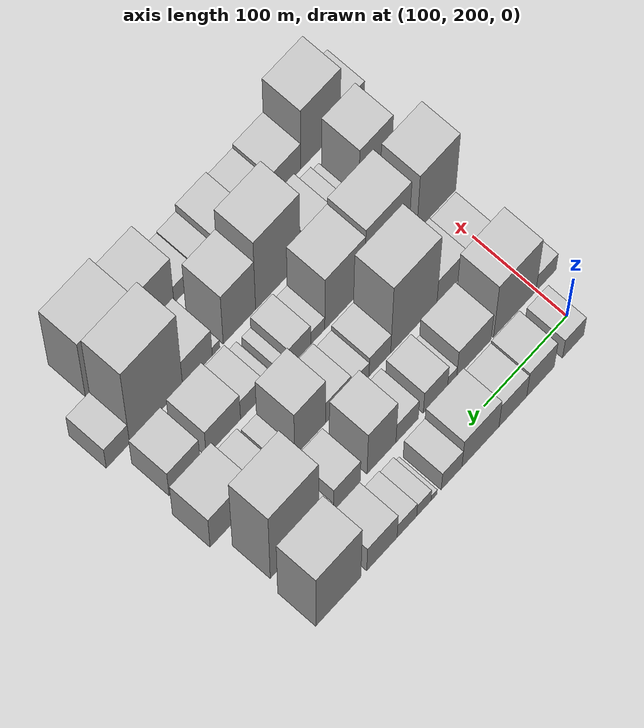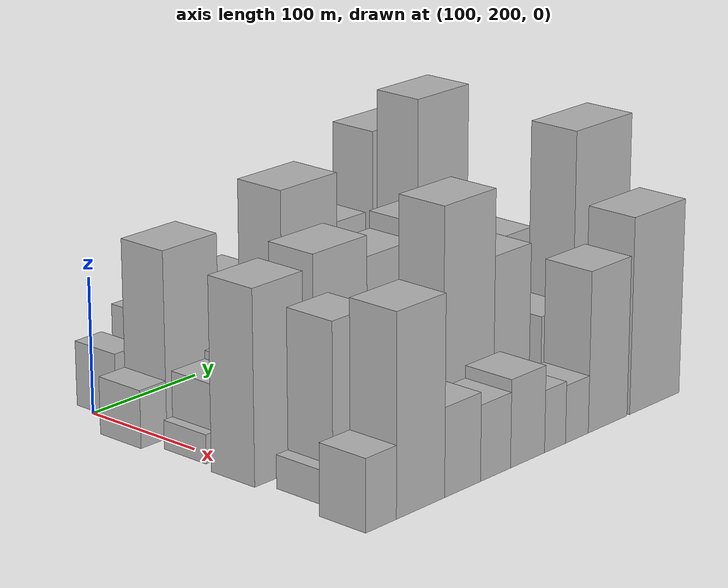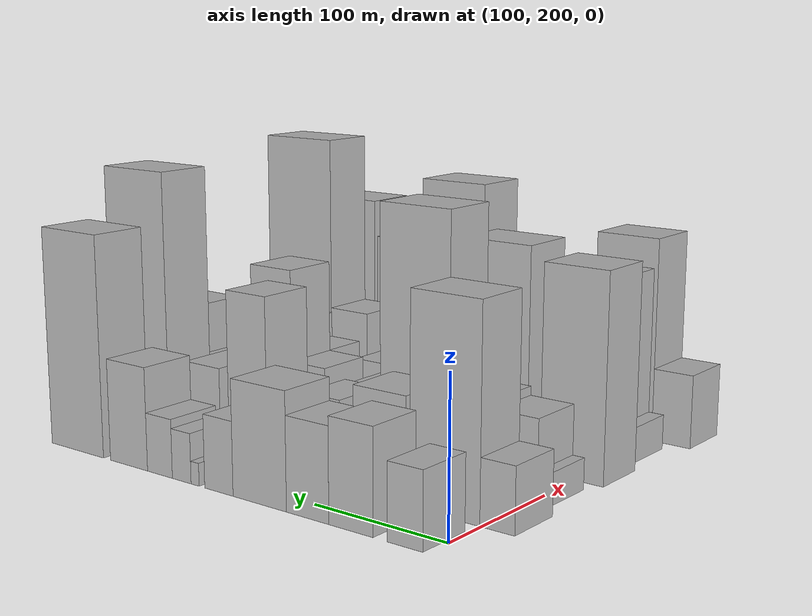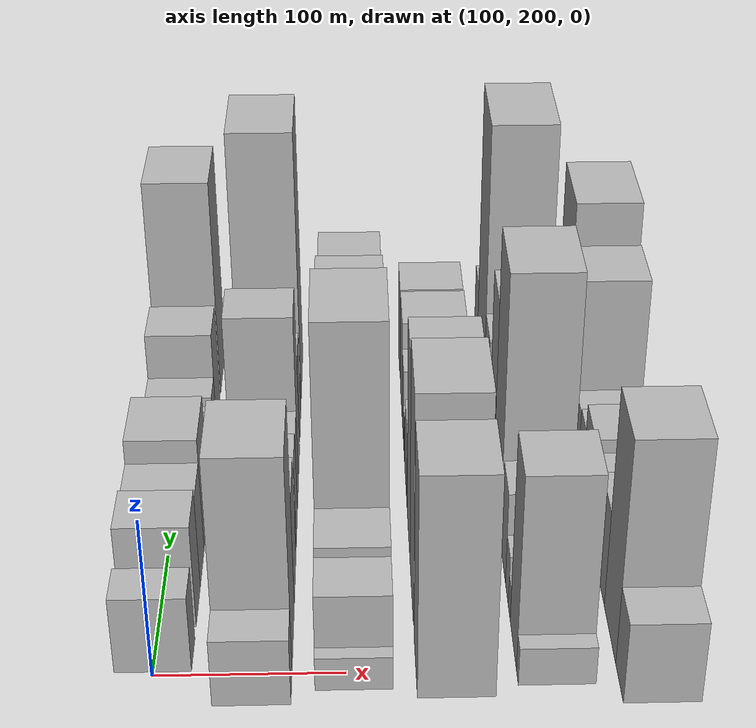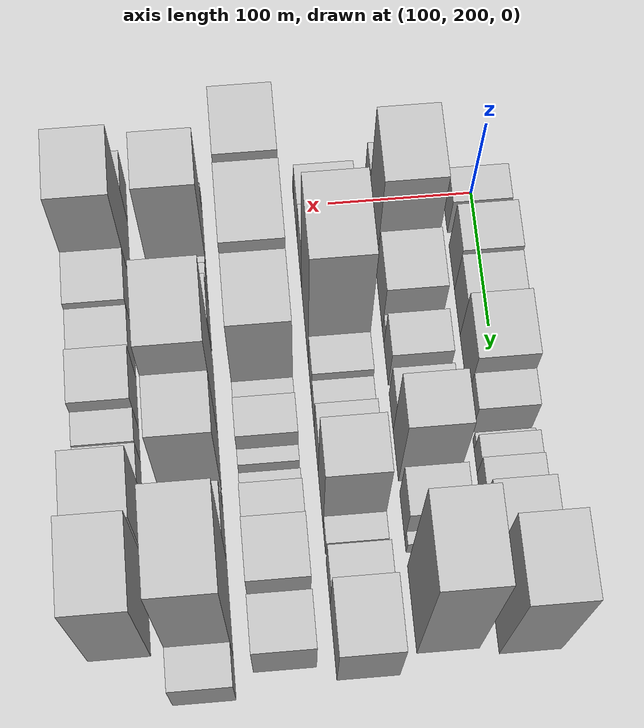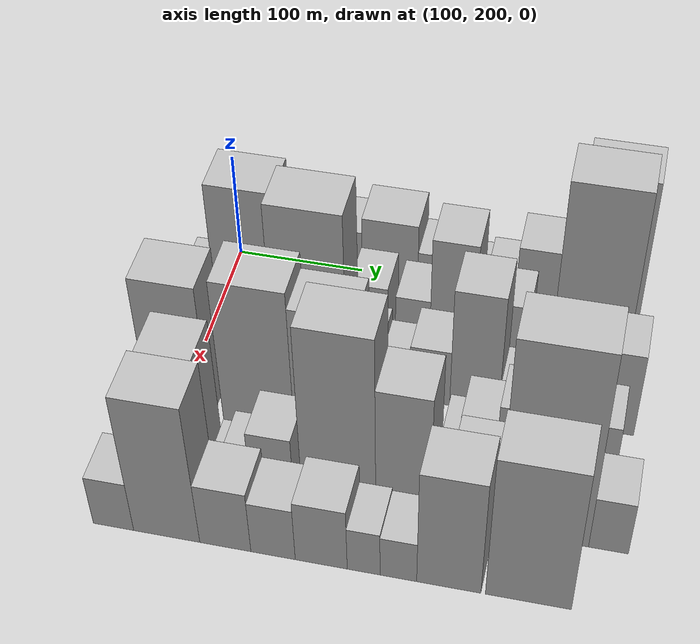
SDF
<sdf version="1.6">
 <world name="default">
  <model name="building_33">
   <static>1</static>
   <pose>100.0000 215.9216 0 0.000000 0.000000 0.000000</pose>
   <link name="link">
    <pose>0 0 24.00 0 0 0</pose>
    <collision name="collision"><geometry><box><size>40.0000 25.5261 48.0000</size></box></geometry></collision>
    <visual name="visual">
     <cast_shadows>0</cast_shadows>
     <geometry><box><size>40.0000 25.5261 48.0000</size></box></geometry>
     <material>
      <script>
       <uri>model://HANNAS_wall/materials/scripts</uri>
       <uri>model://HANNAS_wall/materials/textures</uri>
       <name>vrc/HANNAS_wall</name>
      </script>
     </material>
    </visual>
   </link>
  </model>
  <model name="building_34">
   <static>1</static>
   <pose>100.0000 255.2590 0 0.000000 0.000000 0.000000</pose>
   <link name="link">
    <pose>0 0 33.00 0 0 0</pose>
    <collision name="collision"><geometry><box><size>40.0000 33.1487 66.0000</size></box></geometry></collision>
    <visual name="visual">
     <cast_shadows>0</cast_shadows>
     <geometry><box><size>40.0000 33.1487 66.0000</size></box></geometry>
     <material>
      <script>
       <uri>model://HANNAS_wall/materials/scripts</uri>
       <uri>model://HANNAS_wall/materials/textures</uri>
       <name>vrc/HANNAS_wall</name>
      </script>
     </material>
    </visual>
   </link>
  </model>
  <model name="building_35">
   <static>1</static>
   <pose>100.0000 288.4761 0 0.000000 0.000000 0.000000</pose>
   <link name="link">
    <pose>0 0 30.00 0 0 0</pose>
    <collision name="collision"><geometry><box><size>40.0000 33.2853 60.0000</size></box></geometry></collision>
    <visual name="visual">
     <cast_shadows>0</cast_shadows>
     <geometry><box><size>40.0000 33.2853 60.0000</size></box></geometry>
     <material>
      <script>
       <uri>model://HANNAS_wall/materials/scripts</uri>
       <uri>model://HANNAS_wall/materials/textures</uri>
       <name>vrc/HANNAS_wall</name>
      </script>
     </material>
    </visual>
   </link>
  </model>
  <model name="building_36">
   <static>1</static>
   <pose>100.0000 327.2402 0 0.000000 0.000000 0.000000</pose>
   <link name="link">
    <pose>0 0 37.50 0 0 0</pose>
    <collision name="collision"><geometry><box><size>40.0000 44.2429 75.0000</size></box></geometry></collision>
    <visual name="visual">
     <cast_shadows>0</cast_shadows>
     <geometry><box><size>40.0000 44.2429 75.0000</size></box></geometry>
     <material>
      <script>
       <uri>model://HANNAS_wall/materials/scripts</uri>
       <uri>model://HANNAS_wall/materials/textures</uri>
       <name>vrc/HANNAS_wall</name>
      </script>
     </material>
    </visual>
   </link>
  </model>
  <model name="building_37">
   <static>1</static>
   <pose>100.0000 361.6530 0 0.000000 0.000000 0.000000</pose>
   <link name="link">
    <pose>0 0 24.00 0 0 0</pose>
    <collision name="collision"><geometry><box><size>40.0000 24.5829 48.0000</size></box></geometry></collision>
    <visual name="visual">
     <cast_shadows>0</cast_shadows>
     <geometry><box><size>40.0000 24.5829 48.0000</size></box></geometry>
     <material>
      <script>
       <uri>model://HANNAS_wall/materials/scripts</uri>
       <uri>model://HANNAS_wall/materials/textures</uri>
       <name>vrc/HANNAS_wall</name>
      </script>
     </material>
    </visual>
   </link>
  </model>
  <model name="building_38">
   <static>1</static>
   <pose>100.0000 382.5229 0 0.000000 0.000000 0.000000</pose>
   <link name="link">
    <pose>0 0 7.50 0 0 0</pose>
    <collision name="collision"><geometry><box><size>40.0000 7.1568 15.0000</size></box></geometry></collision>
    <visual name="visual">
     <cast_shadows>0</cast_shadows>
     <geometry><box><size>40.0000 7.1568 15.0000</size></box></geometry>
     <material>
      <script>
       <uri>model://HANNAS_wall/materials/scripts</uri>
       <uri>model://HANNAS_wall/materials/textures</uri>
       <name>vrc/HANNAS_wall</name>
      </script>
     </material>
    </visual>
   </link>
  </model>
  <model name="building_39">
   <static>1</static>
   <pose>100.0000 394.5761 0 0.000000 0.000000 0.000000</pose>
   <link name="link">
    <pose>0 0 16.50 0 0 0</pose>
    <collision name="collision"><geometry><box><size>40.0000 16.9496 33.0000</size></box></geometry></collision>
    <visual name="visual">
     <cast_shadows>0</cast_shadows>
     <geometry><box><size>40.0000 16.9496 33.0000</size></box></geometry>
     <material>
      <script>
       <uri>model://HANNAS_wall/materials/scripts</uri>
       <uri>model://HANNAS_wall/materials/textures</uri>
       <name>vrc/HANNAS_wall</name>
      </script>
     </material>
    </visual>
   </link>
  </model>
  <model name="building_40">
   <static>1</static>
   <pose>100.0000 414.6169 0 0.000000 0.000000 0.000000</pose>
   <link name="link">
    <pose>0 0 19.50 0 0 0</pose>
    <collision name="collision"><geometry><box><size>40.0000 23.1319 39.0000</size></box></geometry></collision>
    <visual name="visual">
     <cast_shadows>0</cast_shadows>
     <geometry><box><size>40.0000 23.1319 39.0000</size></box></geometry>
     <material>
      <script>
       <uri>model://HANNAS_wall/materials/scripts</uri>
       <uri>model://HANNAS_wall/materials/textures</uri>
       <name>vrc/HANNAS_wall</name>
      </script>
     </material>
    </visual>
   </link>
  </model>
  <model name="building_41">
   <static>1</static>
   <pose>100.0000 444.0717 0 0.000000 0.000000 0.000000</pose>
   <link name="link">
    <pose>0 0 34.50 0 0 0</pose>
    <collision name="collision"><geometry><box><size>40.0000 35.7775 69.0000</size></box></geometry></collision>
    <visual name="visual">
     <cast_shadows>0</cast_shadows>
     <geometry><box><size>40.0000 35.7775 69.0000</size></box></geometry>
     <material>
      <script>
       <uri>model://HANNAS_wall/materials/scripts</uri>
       <uri>model://HANNAS_wall/materials/textures</uri>
       <name>vrc/HANNAS_wall</name>
      </script>
     </material>
    </visual>
   </link>
  </model>
  <model name="building_42">
   <static>1</static>
   <pose>100.0000 495.3269 0 0.000000 0.000000 0.000000</pose>
   <link name="link">
    <pose>0 0 75.00 0 0 0</pose>
    <collision name="collision"><geometry><box><size>40.0000 52.7330 150.0000</size></box></geometry></collision>
    <visual name="visual">
     <cast_shadows>0</cast_shadows>
     <geometry><box><size>40.0000 52.7330 150.0000</size></box></geometry>
     <material>
      <script>
       <uri>model://HANNAS_wall/materials/scripts</uri>
       <uri>model://HANNAS_wall/materials/textures</uri>
       <name>vrc/HANNAS_wall</name>
      </script>
     </material>
    </visual>
   </link>
  </model>
  <model name="building_82">
   <static>1</static>
   <pose>152.0000 189.0234 0 0.000000 0.000000 0.000000</pose>
   <link name="link">
    <pose>0 0 21.00 0 0 0</pose>
    <collision name="collision"><geometry><box><size>40.0000 24.3405 42.0000</size></box></geometry></collision>
    <visual name="visual">
     <cast_shadows>0</cast_shadows>
     <geometry><box><size>40.0000 24.3405 42.0000</size></box></geometry>
     <material>
      <script>
       <uri>model://HANNAS_wall/materials/scripts</uri>
       <uri>model://HANNAS_wall/materials/textures</uri>
       <name>vrc/HANNAS_wall</name>
      </script>
     </material>
    </visual>
   </link>
  </model>
  <model name="building_83">
   <static>1</static>
   <pose>152.0000 226.8128 0 0.000000 0.000000 0.000000</pose>
   <link name="link">
    <pose>0 0 67.50 0 0 0</pose>
    <collision name="collision"><geometry><box><size>40.0000 51.2383 135.0000</size></box></geometry></collision>
    <visual name="visual">
     <cast_shadows>0</cast_shadows>
     <geometry><box><size>40.0000 51.2383 135.0000</size></box></geometry>
     <material>
      <script>
       <uri>model://HANNAS_wall/materials/scripts</uri>
       <uri>model://HANNAS_wall/materials/textures</uri>
       <name>vrc/HANNAS_wall</name>
      </script>
     </material>
    </visual>
   </link>
  </model>
  <model name="building_84">
   <static>1</static>
   <pose>152.0000 275.9680 0 0.000000 0.000000 0.000000</pose>
   <link name="link">
    <pose>0 0 34.50 0 0 0</pose>
    <collision name="collision"><geometry><box><size>40.0000 41.0722 69.0000</size></box></geometry></collision>
    <visual name="visual">
     <cast_shadows>0</cast_shadows>
     <geometry><box><size>40.0000 41.0722 69.0000</size></box></geometry>
     <material>
      <script>
       <uri>model://HANNAS_wall/materials/scripts</uri>
       <uri>model://HANNAS_wall/materials/textures</uri>
       <name>vrc/HANNAS_wall</name>
      </script>
     </material>
    </visual>
   </link>
  </model>
  <model name="building_85">
   <static>1</static>
   <pose>152.0000 301.9832 0 0.000000 0.000000 0.000000</pose>
   <link name="link">
    <pose>0 0 13.50 0 0 0</pose>
    <collision name="collision"><geometry><box><size>40.0000 10.9582 27.0000</size></box></geometry></collision>
    <visual name="visual">
     <cast_shadows>0</cast_shadows>
     <geometry><box><size>40.0000 10.9582 27.0000</size></box></geometry>
     <material>
      <script>
       <uri>model://HANNAS_wall/materials/scripts</uri>
       <uri>model://HANNAS_wall/materials/textures</uri>
       <name>vrc/HANNAS_wall</name>
      </script>
     </material>
    </visual>
   </link>
  </model>
  <model name="building_86">
   <static>1</static>
   <pose>152.0000 321.9917 0 0.000000 0.000000 0.000000</pose>
   <link name="link">
    <pose>0 0 28.50 0 0 0</pose>
    <collision name="collision"><geometry><box><size>40.0000 29.0587 57.0000</size></box></geometry></collision>
    <visual name="visual">
     <cast_shadows>0</cast_shadows>
     <geometry><box><size>40.0000 29.0587 57.0000</size></box></geometry>
     <material>
      <script>
       <uri>model://HANNAS_wall/materials/scripts</uri>
       <uri>model://HANNAS_wall/materials/textures</uri>
       <name>vrc/HANNAS_wall</name>
      </script>
     </material>
    </visual>
   </link>
  </model>
  <model name="building_87">
   <static>1</static>
   <pose>152.0000 355.7983 0 0.000000 0.000000 0.000000</pose>
   <link name="link">
    <pose>0 0 25.50 0 0 0</pose>
    <collision name="collision"><geometry><box><size>40.0000 26.5545 51.0000</size></box></geometry></collision>
    <visual name="visual">
     <cast_shadows>0</cast_shadows>
     <geometry><box><size>40.0000 26.5545 51.0000</size></box></geometry>
     <material>
      <script>
       <uri>model://HANNAS_wall/materials/scripts</uri>
       <uri>model://HANNAS_wall/materials/textures</uri>
       <name>vrc/HANNAS_wall</name>
      </script>
     </material>
    </visual>
   </link>
  </model>
  <model name="building_88">
   <static>1</static>
   <pose>152.0000 386.2051 0 0.000000 0.000000 0.000000</pose>
   <link name="link">
    <pose>0 0 57.00 0 0 0</pose>
    <collision name="collision"><geometry><box><size>40.0000 34.2590 114.0000</size></box></geometry></collision>
    <visual name="visual">
     <cast_shadows>0</cast_shadows>
     <geometry><box><size>40.0000 34.2590 114.0000</size></box></geometry>
     <material>
      <script>
       <uri>model://HANNAS_wall/materials/scripts</uri>
       <uri>model://HANNAS_wall/materials/textures</uri>
       <name>vrc/HANNAS_wall</name>
      </script>
     </material>
    </visual>
   </link>
  </model>
  <model name="building_89">
   <static>1</static>
   <pose>152.0000 427.0773 0 0.000000 0.000000 0.000000</pose>
   <link name="link">
    <pose>0 0 30.00 0 0 0</pose>
    <collision name="collision"><geometry><box><size>40.0000 31.4854 60.0000</size></box></geometry></collision>
    <visual name="visual">
     <cast_shadows>0</cast_shadows>
     <geometry><box><size>40.0000 31.4854 60.0000</size></box></geometry>
     <material>
      <script>
       <uri>model://HANNAS_wall/materials/scripts</uri>
       <uri>model://HANNAS_wall/materials/textures</uri>
       <name>vrc/HANNAS_wall</name>
      </script>
     </material>
    </visual>
   </link>
  </model>
  <model name="building_90">
   <static>1</static>
   <pose>152.0000 447.1590 0 0.000000 0.000000 0.000000</pose>
   <link name="link">
    <pose>0 0 10.50 0 0 0</pose>
    <collision name="collision"><geometry><box><size>40.0000 8.6780 21.0000</size></box></geometry></collision>
    <visual name="visual">
     <cast_shadows>0</cast_shadows>
     <geometry><box><size>40.0000 8.6780 21.0000</size></box></geometry>
     <material>
      <script>
       <uri>model://HANNAS_wall/materials/scripts</uri>
       <uri>model://HANNAS_wall/materials/textures</uri>
       <name>vrc/HANNAS_wall</name>
      </script>
     </material>
    </visual>
   </link>
  </model>
  <model name="building_91">
   <static>1</static>
   <pose>152.0000 488.7756 0 0.000000 0.000000 0.000000</pose>
   <link name="link">
    <pose>0 0 93.00 0 0 0</pose>
    <collision name="collision"><geometry><box><size>40.0000 56.5553 186.0000</size></box></geometry></collision>
    <visual name="visual">
     <cast_shadows>0</cast_shadows>
     <geometry><box><size>40.0000 56.5553 186.0000</size></box></geometry>
     <material>
      <script>
       <uri>model://HANNAS_wall/materials/scripts</uri>
       <uri>model://HANNAS_wall/materials/textures</uri>
       <name>vrc/HANNAS_wall</name>
      </script>
     </material>
    </visual>
   </link>
  </model>
  <model name="building_133">
   <static>1</static>
   <pose>204.0000 191.1578 0 0.000000 0.000000 0.000000</pose>
   <link name="link">
    <pose>0 0 10.50 0 0 0</pose>
    <collision name="collision"><geometry><box><size>40.0000 8.4028 21.0000</size></box></geometry></collision>
    <visual name="visual">
     <cast_shadows>0</cast_shadows>
     <geometry><box><size>40.0000 8.4028 21.0000</size></box></geometry>
     <material>
      <script>
       <uri>model://HANNAS_wall/materials/scripts</uri>
       <uri>model://HANNAS_wall/materials/textures</uri>
       <name>vrc/HANNAS_wall</name>
      </script>
     </material>
    </visual>
   </link>
  </model>
  <model name="building_134">
   <static>1</static>
   <pose>204.0000 211.2777 0 0.000000 0.000000 0.000000</pose>
   <link name="link">
    <pose>0 0 27.00 0 0 0</pose>
    <collision name="collision"><geometry><box><size>40.0000 31.8368 54.0000</size></box></geometry></collision>
    <visual name="visual">
     <cast_shadows>0</cast_shadows>
     <geometry><box><size>40.0000 31.8368 54.0000</size></box></geometry>
     <material>
      <script>
       <uri>model://HANNAS_wall/materials/scripts</uri>
       <uri>model://HANNAS_wall/materials/textures</uri>
       <name>vrc/HANNAS_wall</name>
      </script>
     </material>
    </visual>
   </link>
  </model>
  <model name="building_135">
   <static>1</static>
   <pose>204.0000 244.3025 0 0.000000 0.000000 0.000000</pose>
   <link name="link">
    <pose>0 0 30.00 0 0 0</pose>
    <collision name="collision"><geometry><box><size>40.0000 34.2127 60.0000</size></box></geometry></collision>
    <visual name="visual">
     <cast_shadows>0</cast_shadows>
     <geometry><box><size>40.0000 34.2127 60.0000</size></box></geometry>
     <material>
      <script>
       <uri>model://HANNAS_wall/materials/scripts</uri>
       <uri>model://HANNAS_wall/materials/textures</uri>
       <name>vrc/HANNAS_wall</name>
      </script>
     </material>
    </visual>
   </link>
  </model>
  <model name="building_136">
   <static>1</static>
   <pose>204.0000 289.0864 0 0.000000 0.000000 0.000000</pose>
   <link name="link">
    <pose>0 0 87.00 0 0 0</pose>
    <collision name="collision"><geometry><box><size>40.0000 55.3552 174.0000</size></box></geometry></collision>
    <visual name="visual">
     <cast_shadows>0</cast_shadows>
     <geometry><box><size>40.0000 55.3552 174.0000</size></box></geometry>
     <material>
      <script>
       <uri>model://HANNAS_wall/materials/scripts</uri>
       <uri>model://HANNAS_wall/materials/textures</uri>
       <name>vrc/HANNAS_wall</name>
      </script>
     </material>
    </visual>
   </link>
  </model>
  <model name="building_137">
   <static>1</static>
   <pose>204.0000 329.7256 0 0.000000 0.000000 0.000000</pose>
   <link name="link">
    <pose>0 0 25.50 0 0 0</pose>
    <collision name="collision"><geometry><box><size>40.0000 25.9233 51.0000</size></box></geometry></collision>
    <visual name="visual">
     <cast_shadows>0</cast_shadows>
     <geometry><box><size>40.0000 25.9233 51.0000</size></box></geometry>
     <material>
      <script>
       <uri>model://HANNAS_wall/materials/scripts</uri>
       <uri>model://HANNAS_wall/materials/textures</uri>
       <name>vrc/HANNAS_wall</name>
      </script>
     </material>
    </visual>
   </link>
  </model>
  <model name="building_138">
   <static>1</static>
   <pose>204.0000 353.5084 0 0.000000 0.000000 0.000000</pose>
   <link name="link">
    <pose>0 0 19.50 0 0 0</pose>
    <collision name="collision"><geometry><box><size>40.0000 21.6423 39.0000</size></box></geometry></collision>
    <visual name="visual">
     <cast_shadows>0</cast_shadows>
     <geometry><box><size>40.0000 21.6423 39.0000</size></box></geometry>
     <material>
      <script>
       <uri>model://HANNAS_wall/materials/scripts</uri>
       <uri>model://HANNAS_wall/materials/textures</uri>
       <name>vrc/HANNAS_wall</name>
      </script>
     </material>
    </visual>
   </link>
  </model>
  <model name="building_139">
   <static>1</static>
   <pose>204.0000 379.2875 0 0.000000 0.000000 0.000000</pose>
   <link name="link">
    <pose>0 0 28.50 0 0 0</pose>
    <collision name="collision"><geometry><box><size>40.0000 29.9158 57.0000</size></box></geometry></collision>
    <visual name="visual">
     <cast_shadows>0</cast_shadows>
     <geometry><box><size>40.0000 29.9158 57.0000</size></box></geometry>
     <material>
      <script>
       <uri>model://HANNAS_wall/materials/scripts</uri>
       <uri>model://HANNAS_wall/materials/textures</uri>
       <name>vrc/HANNAS_wall</name>
      </script>
     </material>
    </visual>
   </link>
  </model>
  <model name="building_140">
   <static>1</static>
   <pose>204.0000 412.5350 0 0.000000 0.000000 0.000000</pose>
   <link name="link">
    <pose>0 0 60.00 0 0 0</pose>
    <collision name="collision"><geometry><box><size>40.0000 36.5794 120.0000</size></box></geometry></collision>
    <visual name="visual">
     <cast_shadows>0</cast_shadows>
     <geometry><box><size>40.0000 36.5794 120.0000</size></box></geometry>
     <material>
      <script>
       <uri>model://HANNAS_wall/materials/scripts</uri>
       <uri>model://HANNAS_wall/materials/textures</uri>
       <name>vrc/HANNAS_wall</name>
      </script>
     </material>
    </visual>
   </link>
  </model>
  <model name="building_141">
   <static>1</static>
   <pose>204.0000 439.7132 0 0.000000 0.000000 0.000000</pose>
   <link name="link">
    <pose>0 0 15.00 0 0 0</pose>
    <collision name="collision"><geometry><box><size>40.0000 17.7769 30.0000</size></box></geometry></collision>
    <visual name="visual">
     <cast_shadows>0</cast_shadows>
     <geometry><box><size>40.0000 17.7769 30.0000</size></box></geometry>
     <material>
      <script>
       <uri>model://HANNAS_wall/materials/scripts</uri>
       <uri>model://HANNAS_wall/materials/textures</uri>
       <name>vrc/HANNAS_wall</name>
      </script>
     </material>
    </visual>
   </link>
  </model>
  <model name="building_142">
   <static>1</static>
   <pose>204.0000 467.9567 0 0.000000 0.000000 0.000000</pose>
   <link name="link">
    <pose>0 0 24.00 0 0 0</pose>
    <collision name="collision"><geometry><box><size>40.0000 28.7100 48.0000</size></box></geometry></collision>
    <visual name="visual">
     <cast_shadows>0</cast_shadows>
     <geometry><box><size>40.0000 28.7100 48.0000</size></box></geometry>
     <material>
      <script>
       <uri>model://HANNAS_wall/materials/scripts</uri>
       <uri>model://HANNAS_wall/materials/textures</uri>
       <name>vrc/HANNAS_wall</name>
      </script>
     </material>
    </visual>
   </link>
  </model>
  <model name="building_143">
   <static>1</static>
   <pose>204.0000 506.0296 0 0.000000 0.000000 0.000000</pose>
   <link name="link">
    <pose>0 0 42.00 0 0 0</pose>
    <collision name="collision"><geometry><box><size>40.0000 47.4359 84.0000</size></box></geometry></collision>
    <visual name="visual">
     <cast_shadows>0</cast_shadows>
     <geometry><box><size>40.0000 47.4359 84.0000</size></box></geometry>
     <material>
      <script>
       <uri>model://HANNAS_wall/materials/scripts</uri>
       <uri>model://HANNAS_wall/materials/textures</uri>
       <name>vrc/HANNAS_wall</name>
      </script>
     </material>
    </visual>
   </link>
  </model>
  <model name="building_188">
   <static>1</static>
   <pose>256.0000 203.3618 0 0.000000 0.000000 0.000000</pose>
   <link name="link">
    <pose>0 0 69.00 0 0 0</pose>
    <collision name="collision"><geometry><box><size>40.0000 46.9925 138.0000</size></box></geometry></collision>
    <visual name="visual">
     <cast_shadows>0</cast_shadows>
     <geometry><box><size>40.0000 46.9925 138.0000</size></box></geometry>
     <material>
      <script>
       <uri>model://HANNAS_wall/materials/scripts</uri>
       <uri>model://HANNAS_wall/materials/textures</uri>
       <name>vrc/HANNAS_wall</name>
      </script>
     </material>
    </visual>
   </link>
  </model>
  <model name="building_189">
   <static>1</static>
   <pose>256.0000 263.3804 0 0.000000 0.000000 0.000000</pose>
   <link name="link">
    <pose>0 0 73.50 0 0 0</pose>
    <collision name="collision"><geometry><box><size>40.0000 53.0446 147.0000</size></box></geometry></collision>
    <visual name="visual">
     <cast_shadows>0</cast_shadows>
     <geometry><box><size>40.0000 53.0446 147.0000</size></box></geometry>
     <material>
      <script>
       <uri>model://HANNAS_wall/materials/scripts</uri>
       <uri>model://HANNAS_wall/materials/textures</uri>
       <name>vrc/HANNAS_wall</name>
      </script>
     </material>
    </visual>
   </link>
  </model>
  <model name="building_190">
   <static>1</static>
   <pose>256.0000 313.5025 0 0.000000 0.000000 0.000000</pose>
   <link name="link">
    <pose>0 0 66.00 0 0 0</pose>
    <collision name="collision"><geometry><box><size>40.0000 47.1995 132.0000</size></box></geometry></collision>
    <visual name="visual">
     <cast_shadows>0</cast_shadows>
     <geometry><box><size>40.0000 47.1995 132.0000</size></box></geometry>
     <material>
      <script>
       <uri>model://HANNAS_wall/materials/scripts</uri>
       <uri>model://HANNAS_wall/materials/textures</uri>
       <name>vrc/HANNAS_wall</name>
      </script>
     </material>
    </visual>
   </link>
  </model>
  <model name="building_191">
   <static>1</static>
   <pose>256.0000 345.5120 0 0.000000 0.000000 0.000000</pose>
   <link name="link">
    <pose>0 0 16.50 0 0 0</pose>
    <collision name="collision"><geometry><box><size>40.0000 16.8196 33.0000</size></box></geometry></collision>
    <visual name="visual">
     <cast_shadows>0</cast_shadows>
     <geometry><box><size>40.0000 16.8196 33.0000</size></box></geometry>
     <material>
      <script>
       <uri>model://HANNAS_wall/materials/scripts</uri>
       <uri>model://HANNAS_wall/materials/textures</uri>
       <name>vrc/HANNAS_wall</name>
      </script>
     </material>
    </visual>
   </link>
  </model>
  <model name="building_192">
   <static>1</static>
   <pose>256.0000 367.0573 0 0.000000 0.000000 0.000000</pose>
   <link name="link">
    <pose>0 0 25.50 0 0 0</pose>
    <collision name="collision"><geometry><box><size>40.0000 26.2709 51.0000</size></box></geometry></collision>
    <visual name="visual">
     <cast_shadows>0</cast_shadows>
     <geometry><box><size>40.0000 26.2709 51.0000</size></box></geometry>
     <material>
      <script>
       <uri>model://HANNAS_wall/materials/scripts</uri>
       <uri>model://HANNAS_wall/materials/textures</uri>
       <name>vrc/HANNAS_wall</name>
      </script>
     </material>
    </visual>
   </link>
  </model>
  <model name="building_193">
   <static>1</static>
   <pose>256.0000 385.5748 0 0.000000 0.000000 0.000000</pose>
   <link name="link">
    <pose>0 0 12.00 0 0 0</pose>
    <collision name="collision"><geometry><box><size>40.0000 10.7643 24.0000</size></box></geometry></collision>
    <visual name="visual">
     <cast_shadows>0</cast_shadows>
     <geometry><box><size>40.0000 10.7643 24.0000</size></box></geometry>
     <material>
      <script>
       <uri>model://HANNAS_wall/materials/scripts</uri>
       <uri>model://HANNAS_wall/materials/textures</uri>
       <name>vrc/HANNAS_wall</name>
      </script>
     </material>
    </visual>
   </link>
  </model>
  <model name="building_194">
   <static>1</static>
   <pose>256.0000 403.7031 0 0.000000 0.000000 0.000000</pose>
   <link name="link">
    <pose>0 0 13.50 0 0 0</pose>
    <collision name="collision"><geometry><box><size>40.0000 13.4923 27.0000</size></box></geometry></collision>
    <visual name="visual">
     <cast_shadows>0</cast_shadows>
     <geometry><box><size>40.0000 13.4923 27.0000</size></box></geometry>
     <material>
      <script>
       <uri>model://HANNAS_wall/materials/scripts</uri>
       <uri>model://HANNAS_wall/materials/textures</uri>
       <name>vrc/HANNAS_wall</name>
      </script>
     </material>
    </visual>
   </link>
  </model>
  <model name="building_195">
   <static>1</static>
   <pose>256.0000 423.6144 0 0.000000 0.000000 0.000000</pose>
   <link name="link">
    <pose>0 0 25.50 0 0 0</pose>
    <collision name="collision"><geometry><box><size>40.0000 26.3303 51.0000</size></box></geometry></collision>
    <visual name="visual">
     <cast_shadows>0</cast_shadows>
     <geometry><box><size>40.0000 26.3303 51.0000</size></box></geometry>
     <material>
      <script>
       <uri>model://HANNAS_wall/materials/scripts</uri>
       <uri>model://HANNAS_wall/materials/textures</uri>
       <name>vrc/HANNAS_wall</name>
      </script>
     </material>
    </visual>
   </link>
  </model>
  <model name="building_196">
   <static>1</static>
   <pose>256.0000 456.9393 0 0.000000 0.000000 0.000000</pose>
   <link name="link">
    <pose>0 0 34.50 0 0 0</pose>
    <collision name="collision"><geometry><box><size>40.0000 40.3195 69.0000</size></box></geometry></collision>
    <visual name="visual">
     <cast_shadows>0</cast_shadows>
     <geometry><box><size>40.0000 40.3195 69.0000</size></box></geometry>
     <material>
      <script>
       <uri>model://HANNAS_wall/materials/scripts</uri>
       <uri>model://HANNAS_wall/materials/textures</uri>
       <name>vrc/HANNAS_wall</name>
      </script>
     </material>
    </visual>
   </link>
  </model>
  <model name="building_197">
   <static>1</static>
   <pose>256.0000 502.2770 0 0.000000 0.000000 0.000000</pose>
   <link name="link">
    <pose>0 0 33.00 0 0 0</pose>
    <collision name="collision"><geometry><box><size>40.0000 36.3561 66.0000</size></box></geometry></collision>
    <visual name="visual">
     <cast_shadows>0</cast_shadows>
     <geometry><box><size>40.0000 36.3561 66.0000</size></box></geometry>
     <material>
      <script>
       <uri>model://HANNAS_wall/materials/scripts</uri>
       <uri>model://HANNAS_wall/materials/textures</uri>
       <name>vrc/HANNAS_wall</name>
      </script>
     </material>
    </visual>
   </link>
  </model>
  <model name="building_233">
   <static>1</static>
   <pose>308.0000 193.6004 0 0.000000 0.000000 0.000000</pose>
   <link name="link">
    <pose>0 0 12.00 0 0 0</pose>
    <collision name="collision"><geometry><box><size>40.0000 11.1275 24.0000</size></box></geometry></collision>
    <visual name="visual">
     <cast_shadows>0</cast_shadows>
     <geometry><box><size>40.0000 11.1275 24.0000</size></box></geometry>
     <material>
      <script>
       <uri>model://HANNAS_wall/materials/scripts</uri>
       <uri>model://HANNAS_wall/materials/textures</uri>
       <name>vrc/HANNAS_wall</name>
      </script>
     </material>
    </visual>
   </link>
  </model>
  <model name="building_234">
   <static>1</static>
   <pose>308.0000 218.8397 0 0.000000 0.000000 0.000000</pose>
   <link name="link">
    <pose>0 0 61.50 0 0 0</pose>
    <collision name="collision"><geometry><box><size>40.0000 39.3511 123.0000</size></box></geometry></collision>
    <visual name="visual">
     <cast_shadows>0</cast_shadows>
     <geometry><box><size>40.0000 39.3511 123.0000</size></box></geometry>
     <material>
      <script>
       <uri>model://HANNAS_wall/materials/scripts</uri>
       <uri>model://HANNAS_wall/materials/textures</uri>
       <name>vrc/HANNAS_wall</name>
      </script>
     </material>
    </visual>
   </link>
  </model>
  <model name="building_235">
   <static>1</static>
   <pose>308.0000 246.4734 0 0.000000 0.000000 0.000000</pose>
   <link name="link">
    <pose>0 0 10.50 0 0 0</pose>
    <collision name="collision"><geometry><box><size>40.0000 9.9164 21.0000</size></box></geometry></collision>
    <visual name="visual">
     <cast_shadows>0</cast_shadows>
     <geometry><box><size>40.0000 9.9164 21.0000</size></box></geometry>
     <material>
      <script>
       <uri>model://HANNAS_wall/materials/scripts</uri>
       <uri>model://HANNAS_wall/materials/textures</uri>
       <name>vrc/HANNAS_wall</name>
      </script>
     </material>
    </visual>
   </link>
  </model>
  <model name="building_236">
   <static>1</static>
   <pose>308.0000 261.2024 0 0.000000 0.000000 0.000000</pose>
   <link name="link">
    <pose>0 0 16.50 0 0 0</pose>
    <collision name="collision"><geometry><box><size>40.0000 19.5416 33.0000</size></box></geometry></collision>
    <visual name="visual">
     <cast_shadows>0</cast_shadows>
     <geometry><box><size>40.0000 19.5416 33.0000</size></box></geometry>
     <material>
      <script>
       <uri>model://HANNAS_wall/materials/scripts</uri>
       <uri>model://HANNAS_wall/materials/textures</uri>
       <name>vrc/HANNAS_wall</name>
      </script>
     </material>
    </visual>
   </link>
  </model>
  <model name="building_237">
   <static>1</static>
   <pose>308.0000 286.7816 0 0.000000 0.000000 0.000000</pose>
   <link name="link">
    <pose>0 0 30.00 0 0 0</pose>
    <collision name="collision"><geometry><box><size>40.0000 31.6169 60.0000</size></box></geometry></collision>
    <visual name="visual">
     <cast_shadows>0</cast_shadows>
     <geometry><box><size>40.0000 31.6169 60.0000</size></box></geometry>
     <material>
      <script>
       <uri>model://HANNAS_wall/materials/scripts</uri>
       <uri>model://HANNAS_wall/materials/textures</uri>
       <name>vrc/HANNAS_wall</name>
      </script>
     </material>
    </visual>
   </link>
  </model>
  <model name="building_238">
   <static>1</static>
   <pose>308.0000 335.0224 0 0.000000 0.000000 0.000000</pose>
   <link name="link">
    <pose>0 0 87.00 0 0 0</pose>
    <collision name="collision"><geometry><box><size>40.0000 52.8645 174.0000</size></box></geometry></collision>
    <visual name="visual">
     <cast_shadows>0</cast_shadows>
     <geometry><box><size>40.0000 52.8645 174.0000</size></box></geometry>
     <material>
      <script>
       <uri>model://HANNAS_wall/materials/scripts</uri>
       <uri>model://HANNAS_wall/materials/textures</uri>
       <name>vrc/HANNAS_wall</name>
      </script>
     </material>
    </visual>
   </link>
  </model>
  <model name="building_239">
   <static>1</static>
   <pose>308.0000 380.6461 0 0.000000 0.000000 0.000000</pose>
   <link name="link">
    <pose>0 0 63.00 0 0 0</pose>
    <collision name="collision"><geometry><box><size>40.0000 38.3829 126.0000</size></box></geometry></collision>
    <visual name="visual">
     <cast_shadows>0</cast_shadows>
     <geometry><box><size>40.0000 38.3829 126.0000</size></box></geometry>
     <material>
      <script>
       <uri>model://HANNAS_wall/materials/scripts</uri>
       <uri>model://HANNAS_wall/materials/textures</uri>
       <name>vrc/HANNAS_wall</name>
      </script>
     </material>
    </visual>
   </link>
  </model>
  <model name="building_240">
   <static>1</static>
   <pose>308.0000 408.2820 0 0.000000 0.000000 0.000000</pose>
   <link name="link">
    <pose>0 0 10.50 0 0 0</pose>
    <collision name="collision"><geometry><box><size>40.0000 8.8889 21.0000</size></box></geometry></collision>
    <visual name="visual">
     <cast_shadows>0</cast_shadows>
     <geometry><box><size>40.0000 8.8889 21.0000</size></box></geometry>
     <material>
      <script>
       <uri>model://HANNAS_wall/materials/scripts</uri>
       <uri>model://HANNAS_wall/materials/textures</uri>
       <name>vrc/HANNAS_wall</name>
      </script>
     </material>
    </visual>
   </link>
  </model>
  <model name="building_241">
   <static>1</static>
   <pose>308.0000 430.1419 0 0.000000 0.000000 0.000000</pose>
   <link name="link">
    <pose>0 0 34.50 0 0 0</pose>
    <collision name="collision"><geometry><box><size>40.0000 34.8310 69.0000</size></box></geometry></collision>
    <visual name="visual">
     <cast_shadows>0</cast_shadows>
     <geometry><box><size>40.0000 34.8310 69.0000</size></box></geometry>
     <material>
      <script>
       <uri>model://HANNAS_wall/materials/scripts</uri>
       <uri>model://HANNAS_wall/materials/textures</uri>
       <name>vrc/HANNAS_wall</name>
      </script>
     </material>
    </visual>
   </link>
  </model>
  <model name="building_242">
   <static>1</static>
   <pose>308.0000 478.6644 0 0.000000 0.000000 0.000000</pose>
   <link name="link">
    <pose>0 0 97.50 0 0 0</pose>
    <collision name="collision"><geometry><box><size>40.0000 62.2139 195.0000</size></box></geometry></collision>
    <visual name="visual">
     <cast_shadows>0</cast_shadows>
     <geometry><box><size>40.0000 62.2139 195.0000</size></box></geometry>
     <material>
      <script>
       <uri>model://HANNAS_wall/materials/scripts</uri>
       <uri>model://HANNAS_wall/materials/textures</uri>
       <name>vrc/HANNAS_wall</name>
      </script>
     </material>
    </visual>
   </link>
  </model>
  <model name="building_243">
   <static>1</static>
   <pose>308.0000 523.3463 0 0.000000 0.000000 0.000000</pose>
   <link name="link">
    <pose>0 0 27.00 0 0 0</pose>
    <collision name="collision"><geometry><box><size>40.0000 27.1499 54.0000</size></box></geometry></collision>
    <visual name="visual">
     <cast_shadows>0</cast_shadows>
     <geometry><box><size>40.0000 27.1499 54.0000</size></box></geometry>
     <material>
      <script>
       <uri>model://HANNAS_wall/materials/scripts</uri>
       <uri>model://HANNAS_wall/materials/textures</uri>
       <name>vrc/HANNAS_wall</name>
      </script>
     </material>
    </visual>
   </link>
  </model>
  <model name="building_285">
   <static>1</static>
   <pose>360.0000 187.9838 0 0.000000 0.000000 0.000000</pose>
   <link name="link">
    <pose>0 0 25.50 0 0 0</pose>
    <collision name="collision"><geometry><box><size>40.0000 29.1453 51.0000</size></box></geometry></collision>
    <visual name="visual">
     <cast_shadows>0</cast_shadows>
     <geometry><box><size>40.0000 29.1453 51.0000</size></box></geometry>
     <material>
      <script>
       <uri>model://HANNAS_wall/materials/scripts</uri>
       <uri>model://HANNAS_wall/materials/textures</uri>
       <name>vrc/HANNAS_wall</name>
      </script>
     </material>
    </visual>
   </link>
  </model>
  <model name="building_286">
   <static>1</static>
   <pose>360.0000 226.2028 0 0.000000 0.000000 0.000000</pose>
   <link name="link">
    <pose>0 0 70.50 0 0 0</pose>
    <collision name="collision"><geometry><box><size>40.0000 47.2928 141.0000</size></box></geometry></collision>
    <visual name="visual">
     <cast_shadows>0</cast_shadows>
     <geometry><box><size>40.0000 47.2928 141.0000</size></box></geometry>
     <material>
      <script>
       <uri>model://HANNAS_wall/materials/scripts</uri>
       <uri>model://HANNAS_wall/materials/textures</uri>
       <name>vrc/HANNAS_wall</name>
      </script>
     </material>
    </visual>
   </link>
  </model>
  <model name="building_287">
   <static>1</static>
   <pose>360.0000 267.9277 0 0.000000 0.000000 0.000000</pose>
   <link name="link">
    <pose>0 0 31.50 0 0 0</pose>
    <collision name="collision"><geometry><box><size>40.0000 36.1569 63.0000</size></box></geometry></collision>
    <visual name="visual">
     <cast_shadows>0</cast_shadows>
     <geometry><box><size>40.0000 36.1569 63.0000</size></box></geometry>
     <material>
      <script>
       <uri>model://HANNAS_wall/materials/scripts</uri>
       <uri>model://HANNAS_wall/materials/textures</uri>
       <name>vrc/HANNAS_wall</name>
      </script>
     </material>
    </visual>
   </link>
  </model>
  <model name="building_288">
   <static>1</static>
   <pose>360.0000 301.5507 0 0.000000 0.000000 0.000000</pose>
   <link name="link">
    <pose>0 0 27.00 0 0 0</pose>
    <collision name="collision"><geometry><box><size>40.0000 31.0890 54.0000</size></box></geometry></collision>
    <visual name="visual">
     <cast_shadows>0</cast_shadows>
     <geometry><box><size>40.0000 31.0890 54.0000</size></box></geometry>
     <material>
      <script>
       <uri>model://HANNAS_wall/materials/scripts</uri>
       <uri>model://HANNAS_wall/materials/textures</uri>
       <name>vrc/HANNAS_wall</name>
      </script>
     </material>
    </visual>
   </link>
  </model>
  <model name="building_289">
   <static>1</static>
   <pose>360.0000 335.1268 0 0.000000 0.000000 0.000000</pose>
   <link name="link">
    <pose>0 0 31.50 0 0 0</pose>
    <collision name="collision"><geometry><box><size>40.0000 36.0633 63.0000</size></box></geometry></collision>
    <visual name="visual">
     <cast_shadows>0</cast_shadows>
     <geometry><box><size>40.0000 36.0633 63.0000</size></box></geometry>
     <material>
      <script>
       <uri>model://HANNAS_wall/materials/scripts</uri>
       <uri>model://HANNAS_wall/materials/textures</uri>
       <name>vrc/HANNAS_wall</name>
      </script>
     </material>
    </visual>
   </link>
  </model>
  <model name="building_290">
   <static>1</static>
   <pose>360.0000 364.4606 0 0.000000 0.000000 0.000000</pose>
   <link name="link">
    <pose>0 0 22.50 0 0 0</pose>
    <collision name="collision"><geometry><box><size>40.0000 22.6044 45.0000</size></box></geometry></collision>
    <visual name="visual">
     <cast_shadows>0</cast_shadows>
     <geometry><box><size>40.0000 22.6044 45.0000</size></box></geometry>
     <material>
      <script>
       <uri>model://HANNAS_wall/materials/scripts</uri>
       <uri>model://HANNAS_wall/materials/textures</uri>
       <name>vrc/HANNAS_wall</name>
      </script>
     </material>
    </visual>
   </link>
  </model>
  <model name="building_291">
   <static>1</static>
   <pose>360.0000 388.2948 0 0.000000 0.000000 0.000000</pose>
   <link name="link">
    <pose>0 0 21.00 0 0 0</pose>
    <collision name="collision"><geometry><box><size>40.0000 25.0640 42.0000</size></box></geometry></collision>
    <visual name="visual">
     <cast_shadows>0</cast_shadows>
     <geometry><box><size>40.0000 25.0640 42.0000</size></box></geometry>
     <material>
      <script>
       <uri>model://HANNAS_wall/materials/scripts</uri>
       <uri>model://HANNAS_wall/materials/textures</uri>
       <name>vrc/HANNAS_wall</name>
      </script>
     </material>
    </visual>
   </link>
  </model>
  <model name="building_292">
   <static>1</static>
   <pose>360.0000 422.6050 0 0.000000 0.000000 0.000000</pose>
   <link name="link">
    <pose>0 0 58.50 0 0 0</pose>
    <collision name="collision"><geometry><box><size>40.0000 43.5565 117.0000</size></box></geometry></collision>
    <visual name="visual">
     <cast_shadows>0</cast_shadows>
     <geometry><box><size>40.0000 43.5565 117.0000</size></box></geometry>
     <material>
      <script>
       <uri>model://HANNAS_wall/materials/scripts</uri>
       <uri>model://HANNAS_wall/materials/textures</uri>
       <name>vrc/HANNAS_wall</name>
      </script>
     </material>
    </visual>
   </link>
  </model>
  <model name="building_293">
   <static>1</static>
   <pose>360.0000 476.1256 0 0.000000 0.000000 0.000000</pose>
   <link name="link">
    <pose>0 0 72.00 0 0 0</pose>
    <collision name="collision"><geometry><box><size>40.0000 57.4846 144.0000</size></box></geometry></collision>
    <visual name="visual">
     <cast_shadows>0</cast_shadows>
     <geometry><box><size>40.0000 57.4846 144.0000</size></box></geometry>
     <material>
      <script>
       <uri>model://HANNAS_wall/materials/scripts</uri>
       <uri>model://HANNAS_wall/materials/textures</uri>
       <name>vrc/HANNAS_wall</name>
      </script>
     </material>
    </visual>
   </link>
  </model>
 </world>
</sdf>
